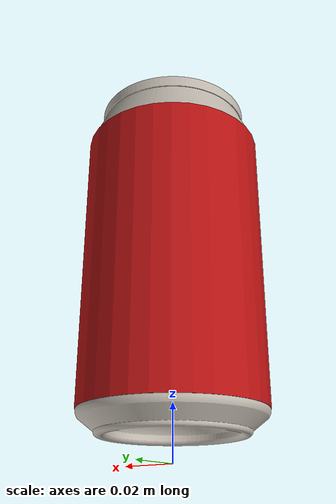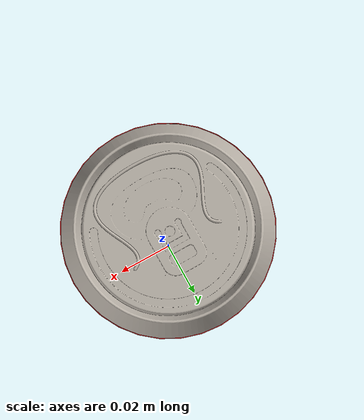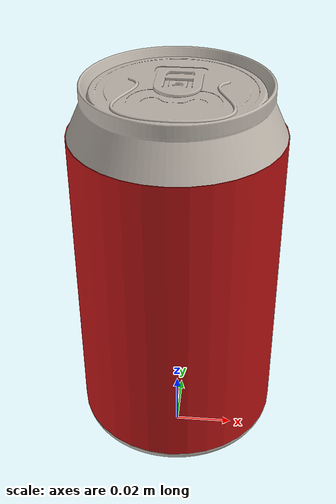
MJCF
<mujoco model="soda_can">
  <compiler angle="radian" autolimits="true" meshdir="assets" texturedir="assets"/>

  <asset>
    <mesh name="can_body"  file="soda_can_body.stl"  scale="0.001 0.001 0.001"/>
    <mesh name="can_label" file="soda_can_label.stl" scale="0.001 0.001 0.001"/>

    <texture name="metal_tex" type="2d" file="metal_material.png"/>
    <material name="can_body_mat"  texture="metal_tex" specular="0.8" shininess="0.5" reflectance="0.3"/>
    <material name="can_label_mat" rgba="0.72 0.07 0.07 1" specular="0.1" shininess="0.1" reflectance="0.0"/>
  </asset>

  <worldbody>
    <body name="soda_can">
      <freejoint name="can_joint"/>
      <inertial mass="0.39" pos="0 0 0.0575" diaginertia="5.8e-4 5.8e-4 2.1e-4"/>
      <geom name="can_body"  mesh="can_body"  type="mesh" material="can_body_mat"/>
      <geom name="can_label" mesh="can_label" type="mesh" material="can_label_mat" contype="0" conaffinity="0"/>
    </body>
  </worldbody>
</mujoco>
